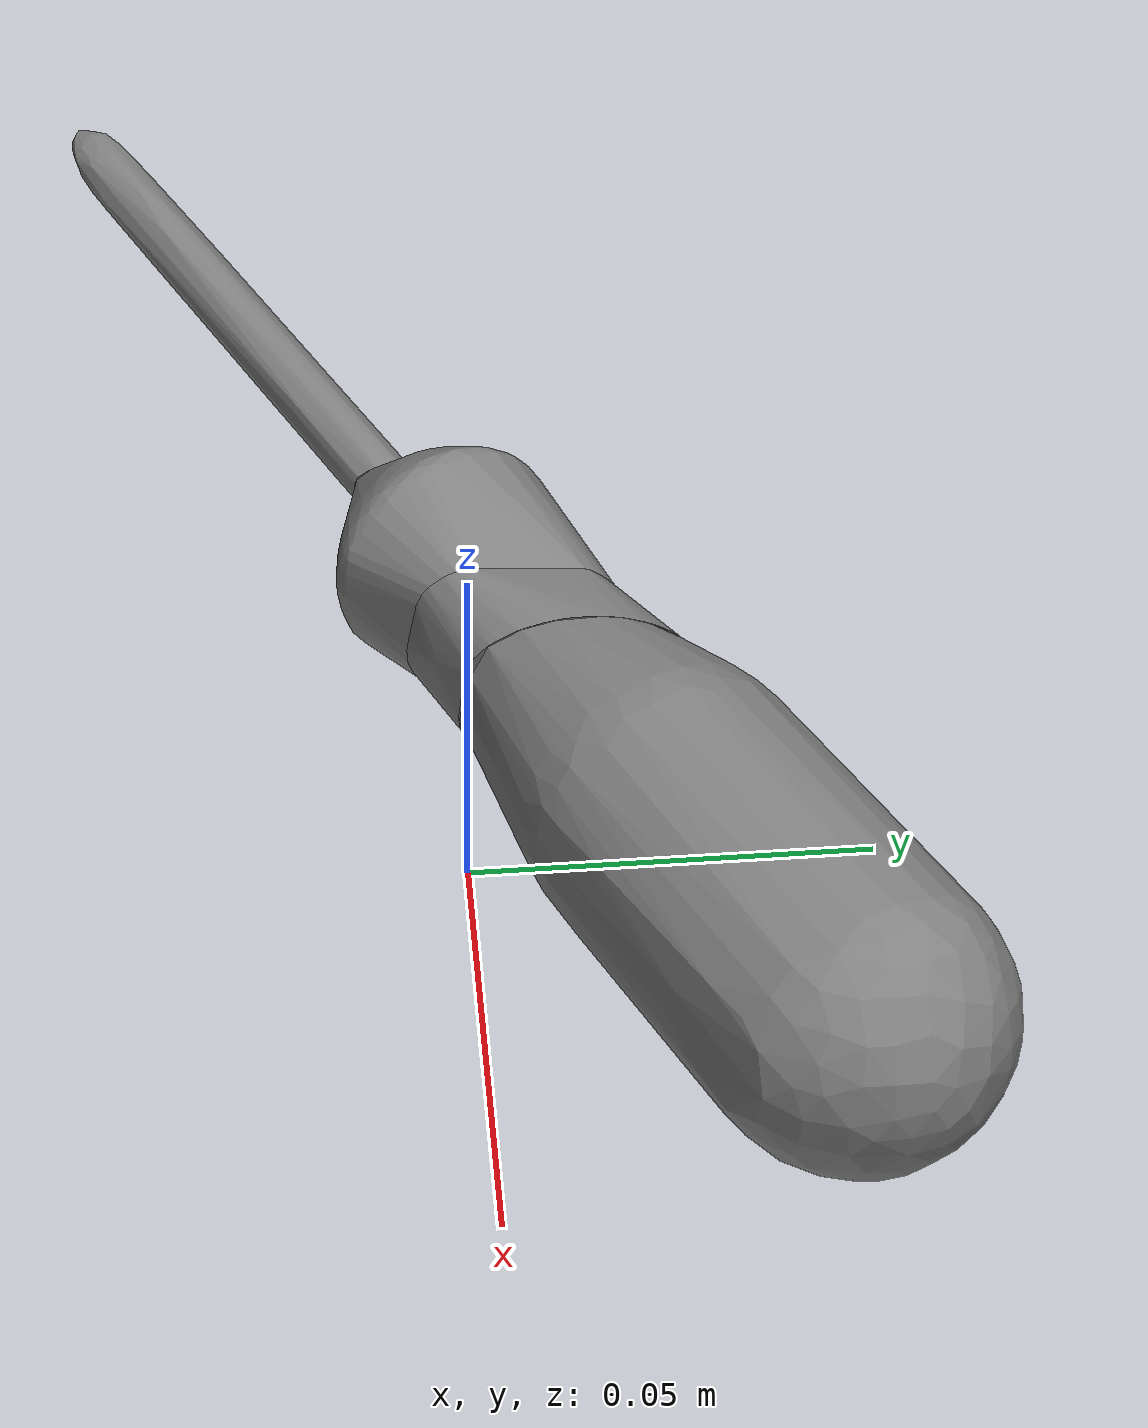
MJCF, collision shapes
<mujoco model="ycb_043_phillips_screwdriver">
  <compiler meshdir="meshes" texturedir="meshes" angle="radian"/>
  <default>
    <default class="visual"><geom contype="0" conaffinity="0" group="2" density="0"/></default>
    <default class="collision"><geom group="3"/></default>
  </default>
  <asset>
    <texture name="ycb_043_phillips_screwdriver_tex" type="2d" file="ycb_043_phillips_screwdriver_texture.png"/>
    <material name="ycb_043_phillips_screwdriver_mat" texture="ycb_043_phillips_screwdriver_tex" specular="0.2" shininess="0.3"/>
    <mesh name="ycb_043_phillips_screwdriver_visual" file="ycb_043_phillips_screwdriver_visual.obj"/>
    <mesh name="ycb_043_phillips_screwdriver_hull0" file="ycb_043_phillips_screwdriver_hull0.obj"/>
    <mesh name="ycb_043_phillips_screwdriver_hull1" file="ycb_043_phillips_screwdriver_hull1.obj"/>
    <mesh name="ycb_043_phillips_screwdriver_hull2" file="ycb_043_phillips_screwdriver_hull2.obj"/>
    <mesh name="ycb_043_phillips_screwdriver_hull3" file="ycb_043_phillips_screwdriver_hull3.obj"/>
  </asset>
  <worldbody>
    <body name="object" pos="0 0 0">
      <freejoint name="object_free"/>
      <geom type="mesh" mesh="ycb_043_phillips_screwdriver_visual" material="ycb_043_phillips_screwdriver_mat" class="visual"/>
      <geom type="mesh" mesh="ycb_043_phillips_screwdriver_hull0" class="collision"/>
      <geom type="mesh" mesh="ycb_043_phillips_screwdriver_hull1" class="collision"/>
      <geom type="mesh" mesh="ycb_043_phillips_screwdriver_hull2" class="collision"/>
      <geom type="mesh" mesh="ycb_043_phillips_screwdriver_hull3" class="collision"/>
    </body>
  </worldbody>
</mujoco>
